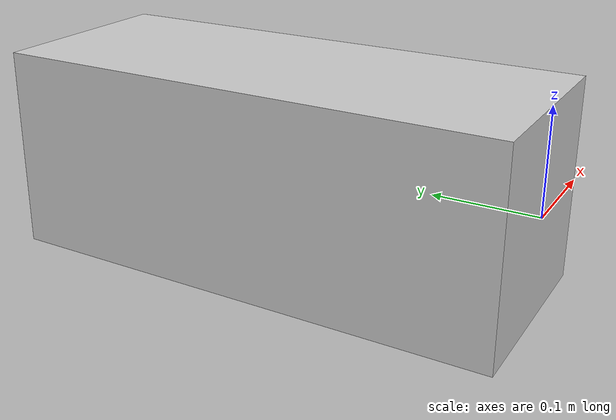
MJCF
<!-- stand.xml -->

<mujoco model="stand">
  <compiler meshdir="assets" />
  <visual>
    <global azimuth="90" elevation="-90"/>
  </visual>
  <default>
    <default class="stand">
      <material specular="0.3" shininess="0.8"/>
      <default class="visual">
        <geom type="mesh" contype="0" conaffinity="0"/>
      </default>
      <default class="collision">
        <geom type="mesh" solref="0.02 1" solimp="0.95 0.99 0.001"/>
      </default>
    </default>
  </default>
  <asset>
    <material name="stand_material" rgba="0.8 0.8 0.8 1"/>
    <mesh name="stand_mesh" file="stand.obj" scale="1 1 1"/>
  </asset>
  <worldbody>
    <body name="stand_body" childclass="stand" pos="0 0 0">
      <inertial pos="0 0 0" mass="100" diaginertia="0.01 0.01 0.01"/>
      <geom mesh="stand_mesh" material="stand_material" class="visual"/>
      <geom mesh="stand_mesh" material="stand_material" class="collision"/>
    </body>
  </worldbody>
</mujoco>
